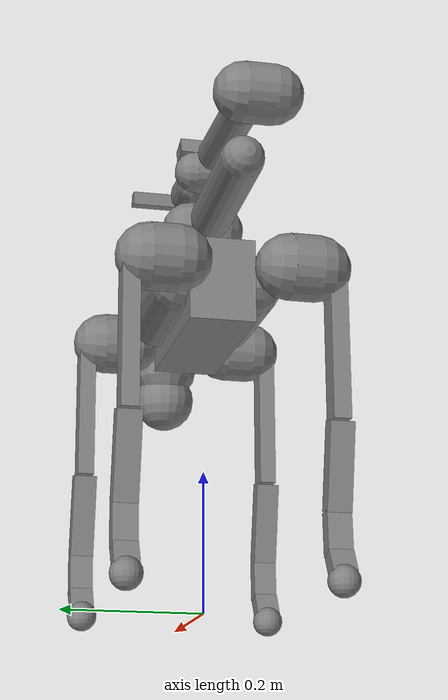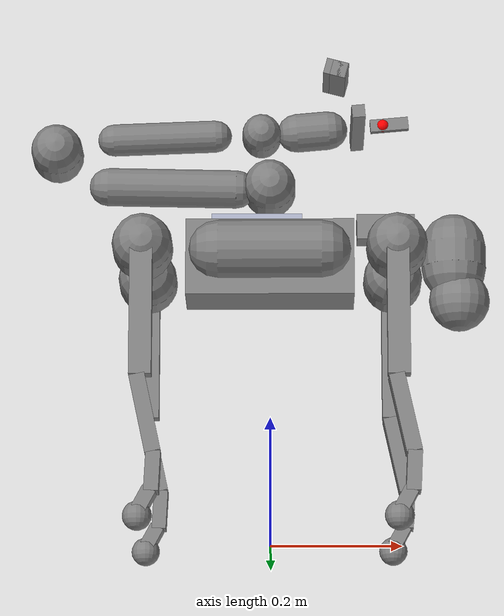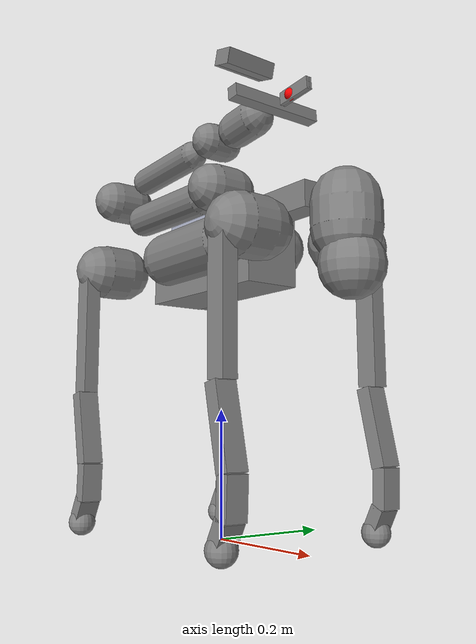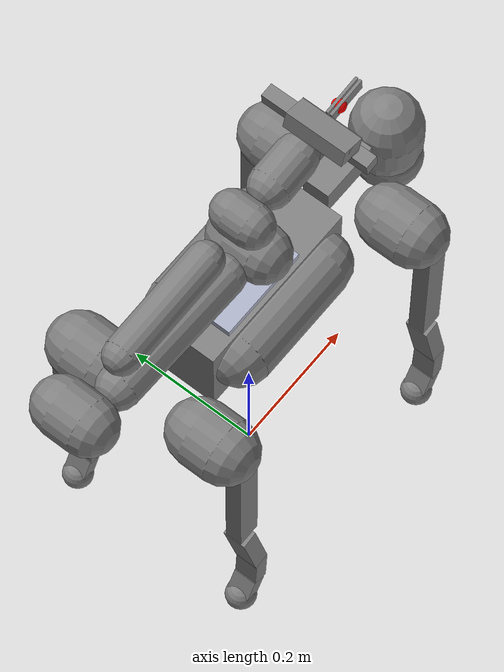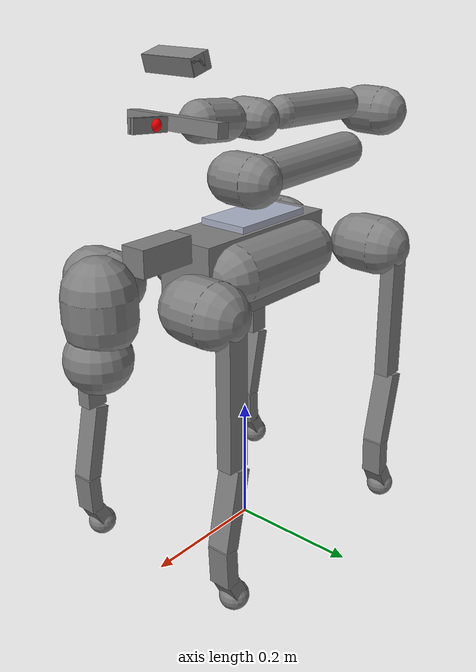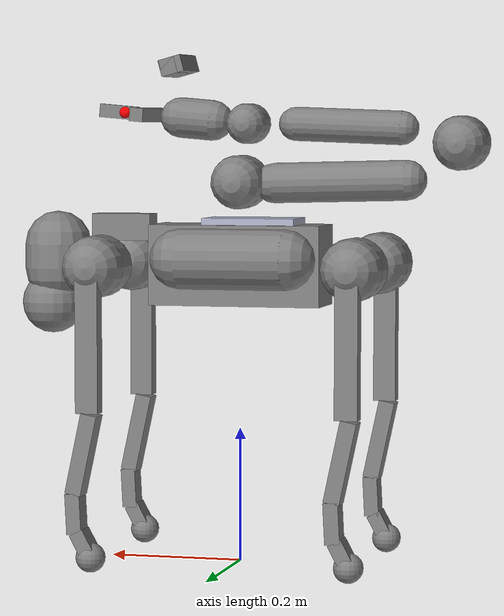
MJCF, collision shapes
<mujoco model="go2_description">
    <compiler angle="radian" autolimits="true"/>

    <option cone="elliptic" impratio="100"/>

    <default>
        <default class="go2">
            <joint axis="0 1 0"/>
            <geom friction="0.6" margin="0.001"/>
            <motor ctrlrange="-23.7 23.7"/>
            <default class="abduction">
                <joint axis="1 0 0" range="-1.0472 1.0472"/>
            </default>
            <default class="hip">
                <default class="front_hip">
                    <joint range="-1.5708 3.4907"/>
                </default>
                <default class="back_hip">
                    <joint range="-0.5236 4.5379"/>
                </default>
            </default>
            <default class="knee">
                <joint range="-2.7227 -0.83776"/>
                <motor ctrlrange="-45.43 45.43"/>
            </default>
            <default class="visual">
                <geom type="mesh" contype="0" conaffinity="0" group="2"/>
            </default>
            <default class="collision">
                <geom group="3"/>
            </default>
        </default>

    </default>

    <asset>
        <material name="metal" rgba=".9 .95 .95 1"/>
        <material name="black" rgba="0 0 0 1"/>
        <material name="white" rgba="1 1 1 1"/>
        <material name="gray" rgba="0.671705 0.692426 0.774270 1"/>

        <mesh file="go2/assets/base_0.obj"/>
        <mesh file="go2/assets/base_1.obj"/>
        <mesh file="go2/assets/base_2.obj"/>
        <mesh file="go2/assets/base_3.obj"/>
        <mesh file="go2/assets/base_4.obj"/>
        <mesh file="go2/assets/hip_0.obj"/>
        <mesh file="go2/assets/hip_1.obj"/>
        <mesh file="go2/assets/thigh_0.obj"/>
        <mesh file="go2/assets/thigh_1.obj"/>
        <mesh file="go2/assets/thigh_mirror_0.obj"/>
        <mesh file="go2/assets/thigh_mirror_1.obj"/>
        <mesh file="go2/assets/calf_0.obj"/>
        <mesh file="go2/assets/calf_1.obj"/>
        <mesh file="go2/assets/calf_mirror_0.obj"/>
        <mesh file="go2/assets/calf_mirror_1.obj"/>
        <mesh file="go2/assets/foot.obj"/>

        <mesh name="base_link" file="piper_l/assets/base_link.STL"/>
        <mesh name="link1" file="piper_l/assets/link1.STL"/>
        <mesh name="link2" file="piper_l/assets/link2.STL"/>
        <mesh name="link3" file="piper_l/assets/link3.STL"/>
        <mesh name="link4" file="piper_l/assets/link4.STL"/>
        <mesh name="link5" file="piper_l/assets/link5.STL"/>
        <mesh name="link7" file="piper_l/assets/link7.STL"/>
        <mesh name="link8" file="piper_l/assets/link8.STL"/>
        <mesh name="gripper_base_100_v3" file="piper_l/assets/gripper_base_100_v3.STL"/>
        <mesh name="realsense_mid_stand_v2" content_type="model/stl" file="piper_l/assets/realsense_mid_stand_v2.STL"/>
    </asset>

    <worldbody>

        <body name="base" pos="0 0 0.445" childclass="go2">
            <inertial pos="0.021112 0 -0.005366" quat="-0.000543471 0.713435 -0.00173769 0.700719" mass="6.921"
                      diaginertia="0.107027 0.0980771 0.0244531"/>
            <freejoint/>

            <geom mesh="base_0" material="black" class="visual"/>
            <geom mesh="base_1" material="black" class="visual"/>
            <geom mesh="base_2" material="black" class="visual"/>
            <geom mesh="base_3" material="white" class="visual"/>
            <geom mesh="base_4" material="gray" class="visual"/>
            <geom size="0.07 0.04 0.01" pos="-0.02 0.0 0.06" material="gray" type="box" class="visual"/>

            <geom size="0.13 0.04675 0.06" type="box" class="collision"/>
            <geom size="0.07 0.04 0.01" pos="-0.02 0.0 0.06" type="box" class="collision"/>
            <geom size="0.045 0.02 0.02" pos="0.18 0.0 0.055" type="box" class="collision"/>
            <geom size="0.045 0.08" pos="0.0 0.05 0.01" quat="0.707107 0 0.707107 0" type="capsule" class="collision"/>
            <geom size="0.045 0.08" pos="0.0 -0.05 0.01" quat="0.707107 0 0.707107 0" type="capsule" class="collision"/>

            <geom size="0.05 0.018" pos="0.285 0 0.01" type="capsule" class="collision"/>
            <geom size="0.047" pos="0.293 0 -0.06" class="collision"/>

            <site name="imu" pos="-0.02557 0 0.04232"/>

            <body name="FL_hip" pos="0.1934 0.0465 0">
                <inertial pos="-0.0054 0.00194 -0.000105" quat="0.497014 0.499245 0.505462 0.498237" mass="0.678"
                          diaginertia="0.00088403 0.000596003 0.000479967"/>
                <joint name="FL_hip_joint" class="abduction" damping="0.1531" armature="0.0010" frictionloss="0.2884"/>
                <geom mesh="hip_0" material="metal" class="visual"/>
                <geom mesh="hip_1" material="gray" class="visual"/>
                <geom size="0.046 0.02" pos="0 0.05 0" quat="1 1 0 0" type="capsule" class="collision"/>
                <body name="FL_thigh" pos="0 0.0955 0">
                    <inertial pos="-0.00374 -0.0223 -0.0327" quat="0.829533 0.0847635 -0.0200632 0.551623" mass="1.152"
                              diaginertia="0.00594973 0.00584149 0.000878787"/>
                    <joint name="FL_thigh_joint" class="front_hip" damping="0.2406" armature="0.0197" frictionloss="0.1739"/>
                    <geom mesh="thigh_0" material="metal" class="visual"/>
                    <geom mesh="thigh_1" material="gray" class="visual"/>
                    <geom size="0.1065 0.01225 0.017" pos="0 0 -0.1065" quat="0.707107 0 0.707107 0" type="box"
                          class="collision"/>
                    <body name="FL_calf" pos="0 0 -0.213">
                        <inertial pos="0.00629595 -0.000622121 -0.141417"
                                  quat="0.710672 0.00154099 -0.00450087 0.703508"
                                  mass="0.241352" diaginertia="0.0014901 0.00146356 5.31397e-05"/>
                        <joint name="FL_calf_joint" class="knee" damping="0.1450" armature="0.0356" frictionloss="1.0151"/>
                        <geom mesh="calf_0" material="gray" class="visual"/>
                        <geom mesh="calf_1" material="black" class="visual"/>
                        <geom size="0.012 0.017  0.06" pos="0.008 0 -0.06" quat="0.994493 0 -0.104807 0" type="box"
                              class="collision"/>
                        <geom size="0.011 0.017  0.03" pos="0.02 0 -0.148" quat="0.999688 0 0.0249974 0" type="box"
                              class="collision"/>
                        <geom size="0.011 0.017  0.017" pos="0.008 0 -0.190" quat="0.999688 0 0.249974 0" type="box"
                              class="collision"/>
                        <geom pos="0 0 -0.213" mesh="foot" class="visual" material="black"/>

                        <!--geom name="FL" class="collision" size="0.022" pos="-0.002 0 -0.213" priority="1" condim="6"
                          friction="0.8 0.02 0.01"/-->

                        <body name="FL_foot" pos="-0.002 0 -0.213">
                            <!-- FL_foot only collision -->
                            <geom name="FL" class="collision" size="0.022"/>
                        </body>

                    </body>
                </body>
            </body>
            <body name="FR_hip" pos="0.1934 -0.0465 0">
                <inertial pos="-0.0054 -0.00194 -0.000105" quat="0.498237 0.505462 0.499245 0.497014" mass="0.678"
                          diaginertia="0.00088403 0.000596003 0.000479967"/>
                <joint name="FR_hip_joint" class="abduction" damping="0.2628" armature="0.0129" frictionloss="0.1835"/>
                <geom mesh="hip_0" material="metal" class="visual" quat="4.63268e-05 1 0 0"/>
                <geom mesh="hip_1" material="gray" class="visual" quat="4.63268e-05 1 0 0"/>
                <geom size="0.046 0.02" pos="0 -0.05 0" quat="0.707107 0.707107 0 0" type="capsule" class="collision"/>
                <body name="FR_thigh" pos="0 -0.0955 0">
                    <inertial pos="-0.00374 0.0223 -0.0327" quat="0.551623 -0.0200632 0.0847635 0.829533" mass="1.152"
                              diaginertia="0.00594973 0.00584149 0.000878787"/>
                    <joint name="FR_thigh_joint" class="front_hip" damping="0.1420" armature="0.0135" frictionloss="0.2386"/>
                    <geom mesh="thigh_mirror_0" material="metal" class="visual"/>
                    <geom mesh="thigh_mirror_1" material="gray" class="visual"/>
                    <geom size="0.1065 0.01225 0.017" pos="0 0 -0.1065" quat="0.707107 0 0.707107 0" type="box"
                          class="collision"/>
                    <body name="FR_calf" pos="0 0 -0.213">
                        <inertial pos="0.00629595 0.000622121 -0.141417" quat="0.703508 -0.00450087 0.00154099 0.710672"
                                  mass="0.241352" diaginertia="0.0014901 0.00146356 5.31397e-05"/>
                        <joint name="FR_calf_joint" class="knee" damping="0.1728" armature="0.0371" frictionloss="0.4912"/>
                        <geom mesh="calf_mirror_0" material="gray" class="visual"/>
                        <geom mesh="calf_mirror_1" material="black" class="visual"/>
                        <geom size="0.012 0.017  0.06" pos="0.008 0 -0.06" quat="0.994493 0 -0.104807 0" type="box"
                              class="collision"/>
                        <geom size="0.011 0.017  0.03" pos="0.02 0 -0.148" quat="0.999688 0 0.0249974 0" type="box"
                              class="collision"/>
                        <geom size="0.011 0.017  0.017" pos="0.008 0 -0.190" quat="0.999688 0 0.249974 0" type="box"
                              class="collision"/>
                        <geom pos="0 0 -0.213" mesh="foot" class="visual" material="black"/>

                        <!--geom name="FR" class="collision" size="0.022" pos="-0.002 0 -0.213" priority="1" condim="6"
                          friction="0.8 0.02 0.01"/-->

                        <body name="FR_foot" pos="-0.002 0 -0.213">
                            <!-- FR_foot only collision -->
                            <geom name="FR" class="collision" size="0.022"/>
                        </body>

                    </body>
                </body>
            </body>
            <body name="RL_hip" pos="-0.1934 0.0465 0">
                <inertial pos="0.0054 0.00194 -0.000105" quat="0.505462 0.498237 0.497014 0.499245" mass="0.678"
                          diaginertia="0.00088403 0.000596003 0.000479967"/>
                <joint name="RL_hip_joint" class="abduction" damping="0.2243" armature="0.0075" frictionloss="0.1550"/>
                <geom mesh="hip_0" material="metal" class="visual" quat="4.63268e-05 0 1 0"/>
                <geom mesh="hip_1" material="gray" class="visual" quat="4.63268e-05 0 1 0"/>
                <geom size="0.046 0.02" pos="0 0.05 0" quat="0.707107 0.707107 0 0" type="capsule" class="collision"/>
                <body name="RL_thigh" pos="0 0.0955 0">
                    <inertial pos="-0.00374 -0.0223 -0.0327" quat="0.829533 0.0847635 -0.0200632 0.551623" mass="1.152"
                              diaginertia="0.00594973 0.00584149 0.000878787"/>
                    <joint name="RL_thigh_joint" class="back_hip" damping="0.2352" armature="0.0205" frictionloss="0.1388"/>
                    <geom mesh="thigh_0" material="metal" class="visual"/>
                    <geom mesh="thigh_1" material="gray" class="visual"/>
                    <geom size="0.1065 0.01225 0.017" pos="0 0 -0.1065" quat="0.707107 0 0.707107 0" type="box"
                          class="collision"/>
                    <body name="RL_calf" pos="0 0 -0.213">
                        <inertial pos="0.00629595 -0.000622121 -0.141417"
                                  quat="0.710672 0.00154099 -0.00450087 0.703508"
                                  mass="0.241352" diaginertia="0.0014901 0.00146356 5.31397e-05"/>
                        <joint name="RL_calf_joint" class="knee" damping="0.1201" armature="0.0228" frictionloss="1.3573"/>
                        <geom mesh="calf_0" material="gray" class="visual"/>
                        <geom mesh="calf_1" material="black" class="visual"/>
                        <geom size="0.012 0.017  0.06" pos="0.008 0 -0.06" quat="0.994493 0 -0.104807 0" type="box"
                              class="collision"/>
                        <geom size="0.011 0.017  0.03" pos="0.02 0 -0.148" quat="0.999688 0 0.0249974 0" type="box"
                              class="collision"/>
                        <geom size="0.011 0.017  0.017" pos="0.008 0 -0.190" quat="0.999688 0 0.249974 0" type="box"
                              class="collision"/>
                        <geom pos="0 0 -0.213" mesh="foot" class="visual" material="black"/>

                        <!--geom name="RL" class="collision" size="0.022" pos="-0.002 0 -0.213" priority="1" condim="6"
                          friction="0.8 0.02 0.01"/-->

                        <body name="RL_foot" pos="-0.002 0 -0.213">
                            <!-- RL_foot only collision -->
                            <geom name="RL" class="collision" size="0.022"/>
                        </body>

                    </body>
                </body>
            </body>
            <body name="RR_hip" pos="-0.1934 -0.0465 0">
                <inertial pos="0.0054 -0.00194 -0.000105" quat="0.499245 0.497014 0.498237 0.505462" mass="0.678"
                          diaginertia="0.00088403 0.000596003 0.000479967"/>
                <joint name="RR_hip_joint" class="abduction" damping="0.2989" armature="0.0081" frictionloss="0.2488"/>
                <geom mesh="hip_0" material="metal" class="visual" quat="2.14617e-09 4.63268e-05 4.63268e-05 -1"/>
                <geom mesh="hip_1" material="gray" class="visual" quat="2.14617e-09 4.63268e-05 4.63268e-05 -1"/>
                <geom size="0.046 0.02" pos="0 -0.05 0" quat="0.707107 0.707107 0 0" type="capsule" class="collision"/>
                <body name="RR_thigh" pos="0 -0.0955 0">
                    <inertial pos="-0.00374 0.0223 -0.0327" quat="0.551623 -0.0200632 0.0847635 0.829533" mass="1.152"
                              diaginertia="0.00594973 0.00584149 0.000878787"/>
                    <joint name="RR_thigh_joint" class="back_hip" damping="0.1983" armature="0.0139" frictionloss="0.2484"/>
                    <geom mesh="thigh_mirror_0" material="metal" class="visual"/>
                    <geom mesh="thigh_mirror_1" material="gray" class="visual"/>
                    <geom size="0.1065 0.01225 0.017" pos="0 0 -0.1065" quat="0.707107 0 0.707107 0" type="box"
                          class="collision"/>
                    <body name="RR_calf" pos="0 0 -0.213">
                        <inertial pos="0.00629595 0.000622121 -0.141417" quat="0.703508 -0.00450087 0.00154099 0.710672"
                                  mass="0.241352" diaginertia="0.0014901 0.00146356 5.31397e-05"/>
                        <joint name="RR_calf_joint" class="knee" damping="0.1000" armature="0.0332" frictionloss="0.7893"/>
                        <geom mesh="calf_mirror_0" material="gray" class="visual"/>
                        <geom mesh="calf_mirror_1" material="black" class="visual"/>
                        <geom size="0.012 0.017  0.06" pos="0.008 0 -0.06" quat="0.994493 0 -0.104807 0" type="box"
                              class="collision"/>
                        <geom size="0.011 0.017  0.03" pos="0.02 0 -0.148" quat="0.999688 0 0.0249974 0" type="box"
                              class="collision"/>
                        <geom size="0.011 0.017  0.017" pos="0.008 0 -0.190" quat="0.999688 0 0.249974 0" type="box"
                              class="collision"/>
                        <geom pos="0 0 -0.213" mesh="foot" class="visual" material="black"/>

                        <!--geom name="RR" class="collision" size="0.022" pos="-0.002 0 -0.213" priority="1" condim="6"
                          friction="0.8 0.02 0.01"/-->

                        <body name="RR_foot" pos="-0.002 0 -0.213">
                            <!-- RR_foot only collision -->
                            <geom name="RR" class="collision" size="0.022"/>
                        </body>

                    </body>
                </body>
            </body>

        <geom type="mesh" rgba="1 1 1 1" mesh="base_link" class="visual"/>
        <body name="link1" pos="0 0 0.123">
            <inertial pos="0.00201 -0.0022 -0.02127" quat="0.721009 0.591428 -0.23148 0.277084" mass="0.11" diaginertia="0.000114473 0.000110765 7.12023e-05"/>
            <joint name="joint1" pos="0 0 0" axis="0 0 1" range="-2.618 2.618" damping="0.1" armature="0.01" frictionloss="0.1"/>

            <geom type="mesh" rgba="1 1 1 1" mesh="link1" class="visual"/>
            <!--geom size="0.04 0.015" pos="0 0.0 -0.05" quat="1 0 0 1" type="capsule" class="collision"/-->

            <body name="link2" quat="-0.0616195 0.0616141 0.704419 0.704416">
                <inertial pos="0.25986 -0.00913 0.00237" quat="0.33951 0.630002 0.324014 0.618745" mass="1.16" diaginertia="0.0163176 0.0162777 0.000957388"/>
                <joint name="joint2" pos="0 0 0" axis="0 0 1" range="0 3.14" damping="0.1" armature="0.01" frictionloss="0.1"/>

                <geom type="mesh" rgba="1 1 1 1" mesh="link2" class="visual"/>
                <geom size="0.04 0.02" pos="0 0.0 0.0" quat="1 0 0 1" type="capsule" class="collision"/>
                <geom size="0.03 0.10" pos="0.15 -0.025 0.0" quat="1 0 1 -0.15" type="capsule" class="collision"/>

                <body name="link3" pos="0.33823 0 0" quat="0.608799 0 0 -0.793324">
                    <inertial pos="-0.00726 -0.19029 -0.00045" quat="0.709181 0.703284 -0.0204559 0.0451178" mass="0.59" diaginertia="0.00558951 0.00554224 0.000258829"/>
                    <joint name="joint3" pos="0 0 0" axis="0 0 1" range="-2.697 0" damping="0.1" armature="0.01" frictionloss="0.1"/>

                <geom type="mesh" rgba="1 1 1 1" mesh="link3" class="visual"/>
                <geom size="0.04 0.02" pos="0 0.0 0.0" quat="1 0 0 1" type="capsule" class="collision"/>
                <geom size="0.025 0.08" pos="-0.01 -0.17 0.0" quat="1 1 0 0.05" type="capsule" class="collision"/>

                <body name="link4" pos="0 -0.3215 0" quat="0.707105 0.707108 0 0">
                    <inertial pos="0.00054 -0.00162 -0.00399" quat="0.859761 0.0861299 -0.104595 0.492395" mass="0.37" diaginertia="0.000174523 0.000169749 0.000142038"/>
                    <joint name="joint4" pos="0 0 0" axis="0 0 1" range="-1.832 1.832" damping="0.1" armature="0.01" frictionloss="0.1"/>

                    <geom type="mesh" rgba="1 1 1 1" mesh="link4" class="visual"/>
                    <geom size="0.03 0.015" pos="0 0.0 0.0" quat="1 1 0 0" type="capsule" class="collision"/>

                    <body name="link5" quat="0.707105 -0.707108 0 0">
                    <inertial pos="0.0002 -0.06142 -0.00257" quat="0.609413 0.425035 -0.377108 0.552947" mass="0.38" diaginertia="0.000302439 0.000295278 0.000150843"/>
                    <joint name="joint5" pos="0 0 0" axis="0 0 1" range="-1.22 1.22" damping="0.1" armature="0.01" frictionloss="0.1"/>

                    <geom type="mesh" rgba="1 1 1 1" mesh="link5" class="visual"/>
                    <geom size="0.03 0.025" pos="0 -0.08 0.0" quat="1 1 0 0" type="capsule" class="collision"/>

                    <body name="link6" pos="0 -0.091 0" quat="0.707105 0.707108 0 0">
                        <!--inertial pos="-0.0418018 0 0.0408739" quat="1 0 0 0" mass="0.0776323" diaginertia="0.000195998 9.16013e-05 0.00024367"/-->
                        <inertial pos="-0.0418018 0 0.0408739" quat="1 0 0 0" mass="0.7976323" diaginertia="0.000195998 9.16013e-05 0.00024367"/>
                        <joint name="joint6" pos="0 0 0" axis="0 0 1" range="-3.14 3.14" damping="0.1" armature="0.01" frictionloss="0.1"/>
                        <geom pos="0.008 -0.002 0.064" quat="0.500398 -0.5 -0.499602 0.5" type="mesh" rgba="1 1 1 1" mesh="gripper_base_100_v3" class="visual"/>
                        <geom size="0.082 0.01 0.01" pos="0.0 -0.0 0.06" quat="0.500398 -0.5 -0.499602 0.5" type="box" class="collision"/>

                        <geom pos="-0.034 -0.002 0.023" quat="0.000563312 -0.706825 0.707388 0.000562864" type="mesh" mesh="realsense_mid_stand_v2" class="visual"/>
                        <geom size="0.012525 0.045 0.0125" pos="-0.0740961 -0.03 0.03725" quat="0.819648 0 -0.572867 0" type="box" class="visual"/>
                        <geom size="0.017 0.045 0.0125" pos="-0.0760961 -0.03 0.032" quat="0.819648 0 -0.572867 0" type="box" class="collision"/>

                        <!--geom size="0.01 0.03  0.002" pos="0.0 -0.003 0.11" quat="0.707105 0.707108 0 0" type="box" class="collision"/-->
                        <site name="attachment_site" size="0.01" pos="0 0 0.1" rgba="1 0 0 1" group="1"/>

                        <body name="link7" pos="0 0 0.13503" quat="0.707105 0.707108 0 0">
                            <inertial pos="0.000277817 -0.0467674 -0.0092103" quat="0.553273 0.439968 -0.46134 0.536174" mass="0.0264822" diaginertia="1.45133e-05 1.0004e-05 5.87021e-06"/>
                            <joint name="joint7" pos="0 0 0" axis="0 0 -1" type="slide" range="0 0.05" damping="2" armature="0.01" frictionloss="0.1"/>
                            <geom type="mesh" rgba="0.7 0.7 0.7 1" mesh="link7" class="visual"/>
                            <geom size="0.01 0.03  0.002" pos="0.0 -0.025 -0.003" quat="1 0 0 0" type="box" class="collision"/>
                        </body>
                        <body name="link8" pos="0 0 0.13503" quat="0.707105 -0.707108 0 0">
                            <inertial pos="0.000277817 0.0467674 -0.0092103" quat="0.553273 0.439968 -0.46134 0.536174" mass="0.0264822" diaginertia="1.45133e-05 1.0004e-05 5.87021e-06"/>
                            <joint name="joint8" pos="0 0 0" axis="0 0 1" type="slide" range="-0.05 0" damping="2" armature="0.01" frictionloss="0.1"/>
                            <geom type="mesh" rgba="0.792157 0.819608 0.933333 1" mesh="link8" class="visual"/>
                            <geom size="0.01 0.03  0.002" pos="0.0 0.025 -0.003" quat="1 0 0 0" type="box" class="collision"/>
                        </body>
                  </body>
                </body>
              </body>
            </body>
        </body>
    </body>

        </body>
    </worldbody>

    <equality>
        <joint joint1="joint8" joint2="joint7" polycoef="0 -1 0 0 0"/>
    </equality>

    <actuator>
        <motor class="abduction" name="FL_hip" joint="FL_hip_joint"/>
        <motor class="hip" name="FL_thigh" joint="FL_thigh_joint"/>
        <motor class="knee" name="FL_calf" joint="FL_calf_joint"/>
        <motor class="abduction" name="FR_hip" joint="FR_hip_joint"/>
        <motor class="hip" name="FR_thigh" joint="FR_thigh_joint"/>
        <motor class="knee" name="FR_calf" joint="FR_calf_joint"/>
        <motor class="abduction" name="RL_hip" joint="RL_hip_joint"/>
        <motor class="hip" name="RL_thigh" joint="RL_thigh_joint"/>
        <motor class="knee" name="RL_calf" joint="RL_calf_joint"/>
        <motor class="abduction" name="RR_hip" joint="RR_hip_joint"/>
        <motor class="hip" name="RR_thigh" joint="RR_thigh_joint"/>
        <motor class="knee" name="RR_calf" joint="RR_calf_joint"/>

        <motor name="joint1" ctrlrange="-32 32" joint="joint1"/>
        <motor name="joint2" ctrlrange="-32 32" joint="joint2"/>
        <motor name="joint3" ctrlrange="-32 32" joint="joint3"/>
        <motor name="joint4" ctrlrange="-8 8" joint="joint4"/>
        <motor name="joint5" ctrlrange="-8 8" joint="joint5"/>
        <motor name="joint6" ctrlrange="-8 8" joint="joint6"/>
        <motor name="gripper" ctrlrange="-0.5 0.5" joint="joint7"/>
    </actuator>

    <sensor>
        <accelerometer name="imu_acc" site="imu"/>
        <gyro name="imu_gyro" site="imu"/>
        <framepos name="imu_pos" objtype="site" objname="imu"/>
        <framequat name="imu_quat" objtype="site" objname="imu"/>

        <jointpos name="joint_FL_hip_joint_pos" joint="FL_hip_joint"/>
        <jointpos name="joint_FL_thigh_joint_pos" joint="FL_thigh_joint"/>
        <jointpos name="joint_FL_calf_joint_pos" joint="FL_calf_joint"/>
        <jointpos name="joint_FR_hip_joint_pos" joint="FR_hip_joint"/>
        <jointpos name="joint_FR_thigh_joint_pos" joint="FR_thigh_joint"/>
        <jointpos name="joint_FR_calf_joint_pos" joint="FR_calf_joint"/>
        <jointpos name="joint_RL_hip_joint_pos" joint="RL_hip_joint"/>
        <jointpos name="joint_RL_thigh_joint_pos" joint="RL_thigh_joint"/>
        <jointpos name="joint_RL_calf_joint_pos" joint="RL_calf_joint"/>
        <jointpos name="joint_RR_hip_joint_pos" joint="RR_hip_joint"/>
        <jointpos name="joint_RR_thigh_joint_pos" joint="RR_thigh_joint"/>
        <jointpos name="joint_RR_calf_joint_pos" joint="RR_calf_joint"/>

        <jointpos name="joint1_pos" joint="joint1"/>
        <jointpos name="joint2_pos" joint="joint2"/>
        <jointpos name="joint3_pos" joint="joint3"/>
        <jointpos name="joint4_pos" joint="joint4"/>
        <jointpos name="joint5_pos" joint="joint5"/>
        <jointpos name="joint6_pos" joint="joint6"/>
        <jointpos name="gripper_pos" joint="joint7"/>
        <!--jointpos name="joint8_pos" joint="joint8"/-->
    </sensor>

    <keyframe>
        <key name="home" qpos="0 0 0.27 1 0 0 0 0 0.9 -1.8 0 0.9 -1.8 0 0.9 -1.8 0 0.9 -1.8 0 0. -0. -0. 0 0 0.06"/>
        <key name="down" qpos="0 0 0.05 1 0 0 0 0.0 1.21 -2.794 0.0 1.21 -2.794 0.40 1.21 -2.794 -0.40 1.21 -2.794 0 0. -0. -0. 0 0 0.06"/>
    </keyframe>
</mujoco>
